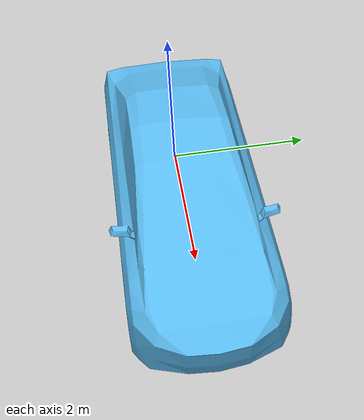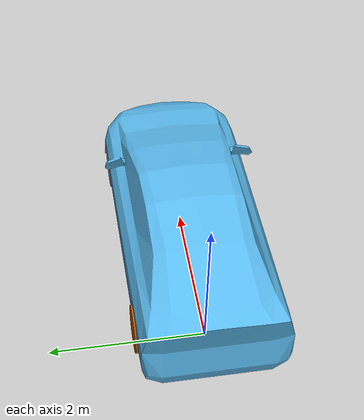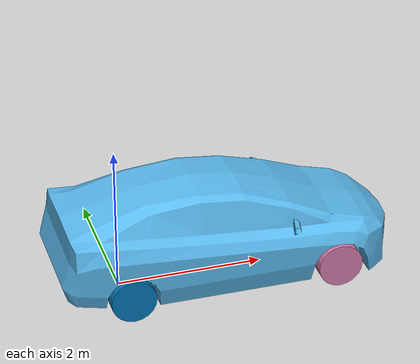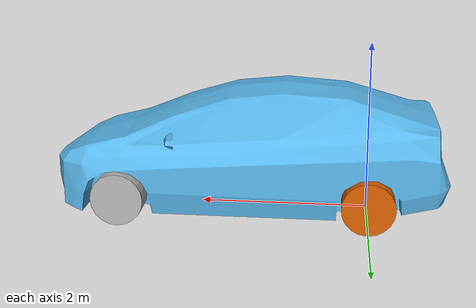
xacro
<?xml version="1.0"?>
<robot name="prius" xmlns:xacro="http://ros.org/wiki/xacro">

  <xacro:include filename="$(find prius_description)/urdf/body.xacro" />
  <xacro:include filename="$(find prius_description)/urdf/axle.xacro" />
  <xacro:include filename="$(find prius_description)/urdf/wheel.xacro" />
  <xacro:include filename="$(find prius_description)/urdf/steering.xacro" />
  <xacro:include filename="$(find prius_description)/urdf/laser.xacro" />
  <xacro:include filename="$(find prius_description)/urdf/camera.xacro" />
  <xacro:include filename="$(find prius_description)/urdf/sonar.xacro" />

  <!-- ADD BODY+CHASSIS -->
  <xacro:body_macro/>
  <!-- ADD 2 FRONT STEERING AXLES -->
  <xacro:axle_macro parent="chassis" child="fl_axle" axle_joint_name="front_left_steer_joint">
    <origin xyz="0.767 -1.41 0.3" rpy="0 0 0"/>
  </xacro:axle_macro>
  <xacro:axle_macro parent="chassis" child="fr_axle" axle_joint_name="front_right_steer_joint">
    <origin xyz="-0.767 -1.41 0.3" rpy="0 0 0"/>
  </xacro:axle_macro>

  <!-- ADD 4 WHEELS -->
  <xacro:wheel_macro  parent="chassis" child="rear_right_wheel" wheel_joint_name="rear_right_wheel_joint">
    <origin xyz="-0.793 1.45 0.3" rpy="0 0 0"/>
  </xacro:wheel_macro>
  <xacro:wheel_macro  parent="chassis" child="rear_left_wheel" wheel_joint_name="rear_left_wheel_joint">
    <origin xyz="0.793 1.45 0.3" rpy="0 0 0"/>
  </xacro:wheel_macro>
  <xacro:wheel_macro  parent="fr_axle" child="front_right_wheel" wheel_joint_name="front_right_wheel_joint">
    <origin xyz="0 0 0" rpy="0 0 0"/>
  </xacro:wheel_macro>
  <xacro:wheel_macro  parent="fl_axle" child="front_left_wheel" wheel_joint_name="front_left_wheel_joint">
    <origin xyz="0 0 0" rpy="0 0 0"/>
  </xacro:wheel_macro>

  <!-- ADD STEERING WHEEL-->
  <xacro:steering_macro  parent="chassis" child="steering_wheel" steering_joint_name="steering_joint">
    <origin xyz="0.357734 -0.627868 0.988243" rpy="-1.302101 0 0"/>
  </xacro:steering_macro>

  <!-- ADD 3 LASERS-->
  <xacro:laser_macro  parent="chassis" child="center_laser_link" laser_joint_name="center_laser_joint">
    <origin xyz="0 0.4 1.8" rpy="0 0 -1.5707"/>
  </xacro:laser_macro>
  <xacro:laser_macro  parent="chassis" child="front_left_laser_link" laser_joint_name="front_left_laser_joint">
    <origin xyz="1 -2.3 0.5" rpy="0 0.05 0"/>
  </xacro:laser_macro>
  <xacro:laser_macro  parent="chassis" child="front_right_laser_link" laser_joint_name="front_right_laser_joint">
    <origin xyz="-1 -2.3 0.5" rpy="0 0.05 3.14"/>
  </xacro:laser_macro>

  <!-- ADD 4 CAMERAS-->
  <xacro:camera_macro  parent="chassis" child="front_camera_link" camera_joint_name="front_camera_joint">
    <origin xyz="0 -0.4 1.4" rpy="0 0.05 -1.5707"/>
  </xacro:camera_macro>
  <xacro:camera_macro  parent="chassis" child="back_camera_link" camera_joint_name="back_camera_joint">
    <origin xyz="0 1.45 1.4" rpy="0 0.05 1.5707"/>
  </xacro:camera_macro>
  <xacro:camera_macro  parent="chassis" child="left_camera_link" camera_joint_name="left_camera_joint">
    <origin xyz="1 -0.7 1.0" rpy="0 0.05 1.0"/>
  </xacro:camera_macro>
  <xacro:camera_macro  parent="chassis" child="right_camera_link" camera_joint_name="right_camera_joint">
    <origin xyz="-1 -0.7 1.0" rpy="0 0.05 2.1416"/>
  </xacro:camera_macro>

  <!-- ADD 4 SONARS-->
  <xacro:sonar_macro  parent="chassis" child="back_left_far_sonar_link" sonar_joint_name="back_left_far_sonar_joint">
    <origin xyz="0.7 2.4 0.5" rpy="0 0 1.5707"/>
  </xacro:sonar_macro>
  <xacro:sonar_macro  parent="chassis" child="back_left_middle_sonar_link" sonar_joint_name="back_left_middle_sonar_joint">
    <origin xyz="0.24 2.4 0.5" rpy="0 0 1.5707"/>
  </xacro:sonar_macro>
  <xacro:sonar_macro  parent="chassis" child="back_right_far_sonar_link" sonar_joint_name="back_right_far_sonar_joint">
    <origin xyz="-0.7 2.4 0.5" rpy="0 0 1.5707"/>
  </xacro:sonar_macro>
  <xacro:sonar_macro  parent="chassis" child="back_right_middle_sonar_link" sonar_joint_name="back_right_middle_sonar_joint">
    <origin xyz="-0.24 2.4 0.5" rpy="0 0 1.5707"/>
  </xacro:sonar_macro>
  <xacro:sonar_macro  parent="chassis" child="front_left_far_sonar_link" sonar_joint_name="front_left_far_sonar_joint">
    <origin xyz="0.7 -2.1 0.5" rpy="0 0 -1.5707"/>
  </xacro:sonar_macro>
  <xacro:sonar_macro  parent="chassis" child="front_left_middle_sonar_link" sonar_joint_name="front_left_middle_sonar_joint">
    <origin xyz="0.24 -2.3 0.5" rpy="0 0 -1.5707"/>
  </xacro:sonar_macro>
  <xacro:sonar_macro  parent="chassis" child="front_right_far_sonar_link" sonar_joint_name="front_right_far_sonar_joint">
    <origin xyz="-0.7 -2.1 0.5" rpy="0 0 -1.5707"/>
  </xacro:sonar_macro>
  <xacro:sonar_macro  parent="chassis" child="front_right_middle_sonar_link" sonar_joint_name="front_right_middle_sonar_joint">
    <origin xyz="-0.24 -2.3 0.5" rpy="0 0 -1.5707"/>
  </xacro:sonar_macro>
</robot>

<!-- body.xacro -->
<robot xmlns:xacro="http://ros.org/wiki/xacro">
  <xacro:macro name="body_macro">
    <joint name="base_link_connection" type="fixed">
      <parent link="base_link"/>
      <child link="chassis"/>
      <origin xyz="1.45 0 0" rpy="0 0 1.57"/>
      <axis xyz="1 0 0"/>
    </joint>

    <link name="base_link">
      <inertial>
        <mass value="1"/>
        <inertia ixx="0.001" ixy="0.0" ixz="0.0" iyy="0.001" iyz="0.0" izz="0.001"/>
      </inertial>
    </link>

    <link name="chassis">
      <visual>
        <origin xyz="0 0 0" rpy="0 0 0"/>
        <geometry>
          <mesh filename="package://prius_description/meshes/hybrid_body.obj" scale="0.01 0.01 0.01"/>
        </geometry>
      </visual>

      <collision name="chassis">
        <origin xyz="0.0 0.05 0.625" rpy="0 0 0"/>
        <geometry>
          <box size="1.7526 2.1 0.95"/>
        </geometry>
      </collision>

      <collision name="front_bumper">
        <origin xyz="0.0 -2.0 0.458488" rpy="0.0 0 0"/>
        <geometry>
          <box size="1.337282 0.48 0.566691"/>
        </geometry>
      </collision>

      <collision name="hood">
        <origin xyz="0.0 -1.900842 0.676305" rpy="0.341247 0 0"/>
        <geometry>
          <box size="1.597968 0.493107 0.265468"/>
        </geometry>
      </collision>

      <collision name="windshield">
        <origin xyz="0.0 -0.875105 1.032268" rpy="0.335476 0 0"/>
        <geometry>
          <box size="1.168381 1.654253 0.272347"/>
        </geometry>
      </collision>

      <collision name="top_front">
        <origin xyz="0.0 0.161236 1.386042" rpy="0.135030 0 0"/>
        <geometry>
          <box size="1.279154 0.625988 0.171868"/>
        </geometry>
      </collision>

      <collision name="top_rear">
        <origin xyz="0.0 0.817696 1.360069" rpy="-0.068997 0 0"/>
        <geometry>
          <box size="1.285130 0.771189 0.226557"/>
        </geometry>
      </collision>

      <collision name="rear_window">
        <origin xyz="0.0 1.640531 1.175126" rpy="-0.262017 0 0"/>
        <geometry>
          <box size="1.267845 1.116344 0.244286"/>
        </geometry>
      </collision>

      <collision name="trunk">
        <origin xyz="0.0 1.637059 0.888180" rpy="0.0 0 0"/>
        <geometry>
          <box size="1.788064 1.138988 0.482746"/>
        </geometry>
      </collision>

      <collision name="back_bumper">
        <origin xyz="0.0 2.054454 0.577870" rpy="0.0 0 0"/>
        <geometry>
          <box size="1.781650 0.512093 0.581427"/>
        </geometry>
      </collision>

      <inertial>
        <mass value="1356.0"/>
        <origin xyz="0 0 0.48" rpy="0 0 1.5708"/>
        <inertia ixx="2581.13354740" ixy="0.0" ixz="0.0" iyy="591.30846112" iyz="0.0" izz="2681.95008628"/>
      </inertial>
    </link>

  </xacro:macro>
</robot>

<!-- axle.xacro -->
<robot xmlns:xacro="http://ros.org/wiki/xacro">
  <xacro:macro name="axle_macro" params="parent child axle_joint_name *origin">
    <joint name="${axle_joint_name}" type="revolute">
      <parent link="${parent}"/>
      <child link="${child}"/>
      <xacro:insert_block name="origin" />
      <axis xyz="0 0 1"/>
      <limit lower="-0.6727" upper="0.6727" effort="100" velocity="10"/>
    </joint>

    <link name="${child}">
      <inertial>
        <mass value="1"/>
        <origin xyz="0 0 0"/>
        <inertia ixx="0.04" ixy="0.0" ixz="0.0" iyy="0.04" iyz="0.0" izz="0.04"/>
      </inertial>
    </link>
  </xacro:macro>
</robot>

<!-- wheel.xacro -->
<robot xmlns:xacro="http://ros.org/wiki/xacro">
  <xacro:macro name="wheel_macro" params="parent child wheel_joint_name *origin">
    <joint name="${wheel_joint_name}" type="continuous">
      <parent link="${parent}"/>
      <child link="${child}"/>
      <xacro:insert_block name="origin" />
      <axis xyz="1 0 0"/>
    </joint>

    <link name="${child}">
      <inertial>
        <mass value="11"/>
        <origin xyz="0 0 0"/>
        <inertia ixx="0.58631238" ixy="0.0" ixz="0.0" iyy="0.33552910" iyz="0.0" izz="0.33552910"/>
      </inertial>
      <collision name="${child}_collision">
        <geometry>
          <sphere radius="0.31265"/>
        </geometry>
      </collision>
      <visual>
        <origin xyz="0 0 0" rpy="0 0 0"/>
        <geometry>
          <mesh filename="package://prius_description/meshes/wheel.obj" scale="0.01 0.01 0.01"/>
        </geometry>
      </visual>
    </link>

  </xacro:macro>

</robot>

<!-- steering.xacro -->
<robot xmlns:xacro="http://ros.org/wiki/xacro">
  <xacro:macro name="steering_macro" params="parent child steering_joint_name *origin">
    <joint name="${steering_joint_name}" type="revolute">
      <parent link="${parent}"/>
      <child link="${child}"/>
      <xacro:insert_block name="origin" />
      <axis xyz="0 0 1"/>
      <limit lower="-7.85" upper="7.85" effort="1e7" velocity="1e6"/>
    </joint>
    <link name="${child}">
      <inertial>
        <mass value="1.0"/>
        <inertia ixx="0.14583300" ixy="0.0" ixz="0.0" iyy="0.14583300" iyz="0.0" izz="0.125"/>
      </inertial>
      <visual>
        <origin xyz="0 0 0" rpy="1.302101 0 0"/>
        <geometry>
          <mesh filename="package://prius_description/meshes/steering_wheel.obj" scale="0.01 0.01 0.01"/>
        </geometry>
      </visual>
    </link>

  </xacro:macro>

</robot>

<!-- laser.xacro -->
<robot xmlns:xacro="http://ros.org/wiki/xacro">
  <xacro:macro name="laser_macro" params="parent child laser_joint_name *origin">
    <link name="${child}">
      <inertial>
        <mass value="1"/>
        <inertia ixx="0.001" ixy="0.0" ixz="0.0" iyy="0.001" iyz="0.0" izz="0.001"/>
      </inertial>
    </link>
    <joint name="${laser_joint_name}" type="fixed">
      <parent link="${parent}"/>
      <child link="${child}"/>
      <xacro:insert_block name="origin" />
    </joint>
  </xacro:macro>

</robot>

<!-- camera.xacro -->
<robot xmlns:xacro="http://ros.org/wiki/xacro">
  <xacro:macro name="camera_macro" params="parent child camera_joint_name *origin">
    <link name="${child}">
      <inertial>
        <mass value="1"/>
        <inertia ixx="0.001" ixy="0.0" ixz="0.0" iyy="0.001" iyz="0.0" izz="0.001"/>
      </inertial>
    </link>
    <joint name="${camera_joint_name}" type="fixed">
      <parent link="${parent}"/>
      <child link="${child}"/>
      <xacro:insert_block name="origin" />
    </joint>
  </xacro:macro>

</robot>

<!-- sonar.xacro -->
<robot xmlns:xacro="http://ros.org/wiki/xacro">
  <xacro:macro name="sonar_macro" params="parent child sonar_joint_name *origin">
    <link name="${child}">
      <inertial>
        <mass value="1"/>
        <inertia ixx="0.001" ixy="0.0" ixz="0.0" iyy="0.001" iyz="0.0" izz="0.001"/>
      </inertial>
    </link>
    <joint name="${sonar_joint_name}" type="fixed">
      <parent link="${parent}"/>
      <child link="${child}"/>
      <xacro:insert_block name="origin" />
    </joint>
  </xacro:macro>

</robot>
